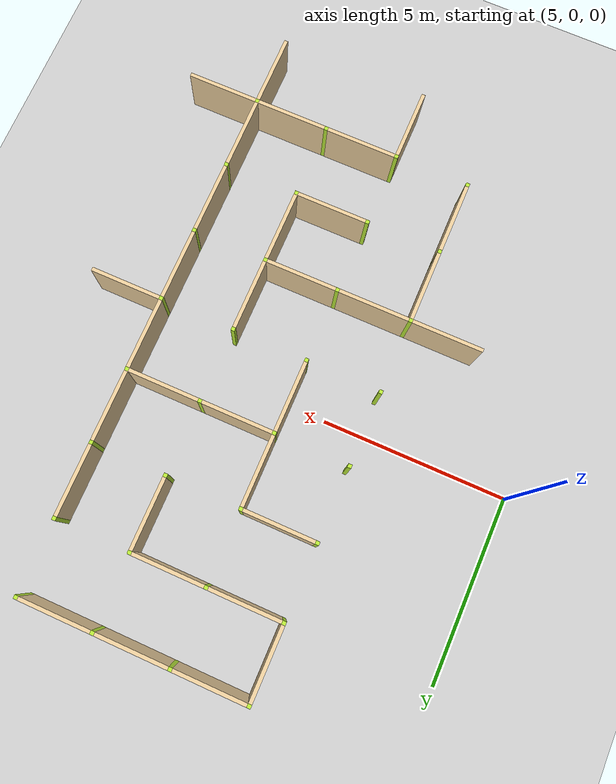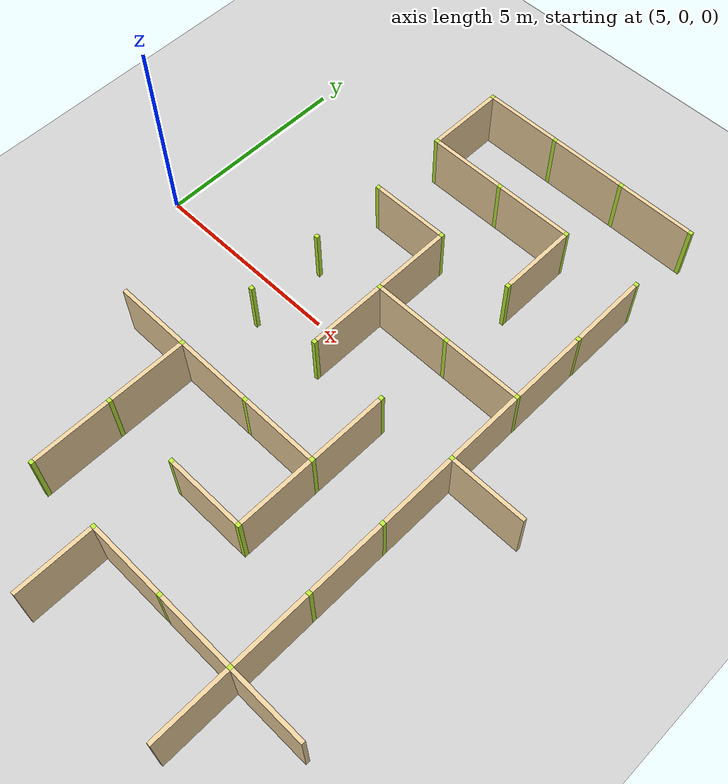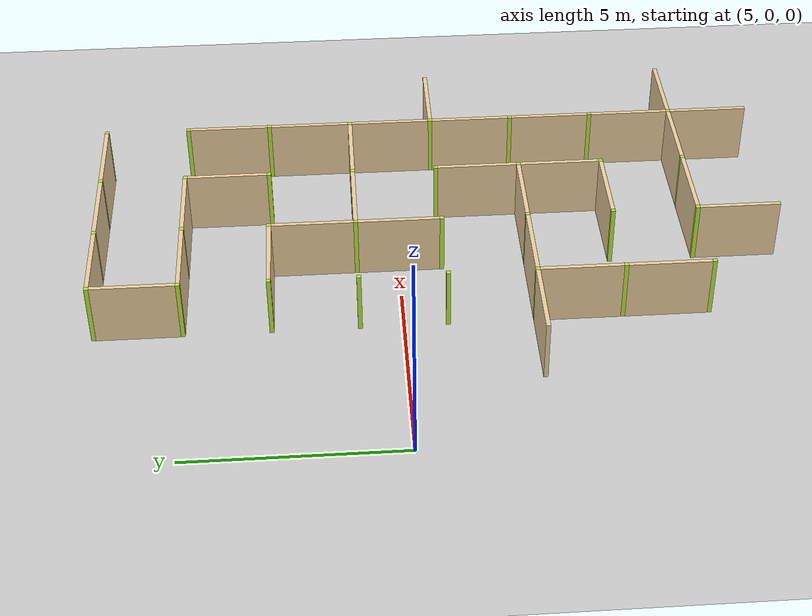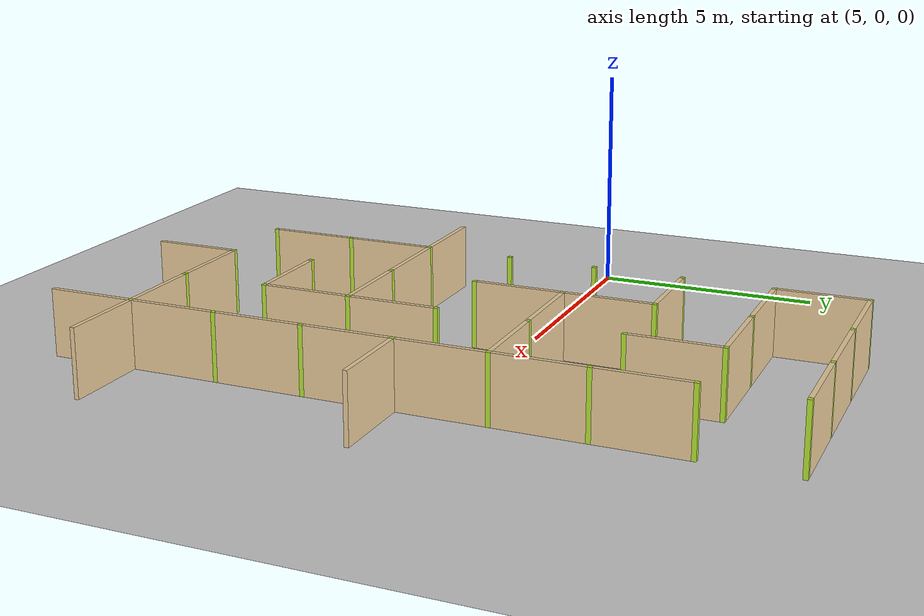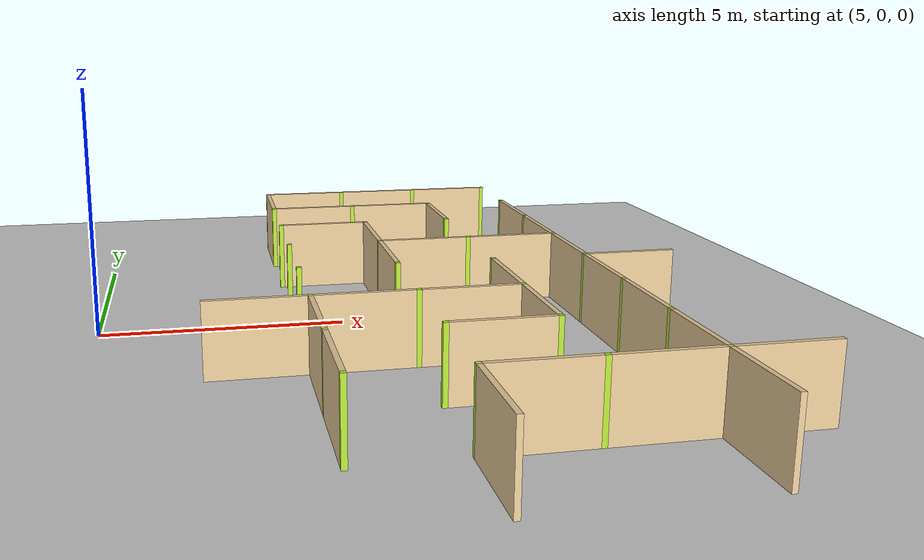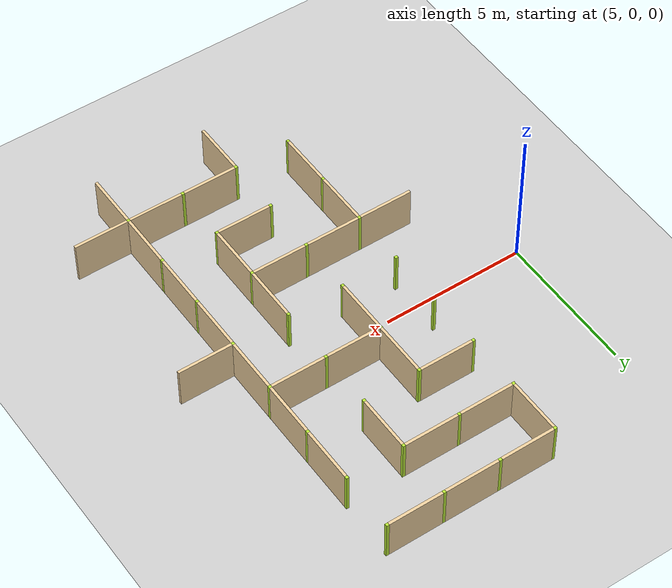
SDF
<sdf version="1.4">
 <world name="maze_world">
  <model name="ground">
   <static>true</static>
   <link name="ground_link">
    <collision name="collision1"><geometry><plane><normal>0 0 1</normal></plane></geometry></collision>
    <visual name="visual1"><geometry><plane><normal>0 0 1</normal><size>100 100</size></plane></geometry></visual>
   </link>
  </model>
  <model name="Untitled">
   <link name="Wall_8_0_h">
    <collision name="Wall_0_Collision">
     <geometry><box><size>1.9 0.1 1.5</size></box></geometry>
     <pose>0 0 0.75 0 -0 0</pose>
    </collision>
    <visual name="Wall_0_Visual">
     <pose>0 0 0.75 0 -0 0</pose>
     <geometry><box><size>1.9 0.1 1.5</size></box></geometry>
     <material>
      <script><uri>file://media/materials/scripts/gazebo.material</uri><name>Gazebo/Grey</name></script>
      <ambient>0.921569 0.807843 0.615686 1</ambient>
     </material>
     <meta><layer>0</layer></meta>
    </visual>
    <pose>10.0 7 0 0 -0 0</pose>
    <sensor name="my_contact" type="contact">
     <contact><collision>box_collision</collision><topic>/rover_collision</topic></contact>
    </sensor>
   </link>
   <link name="Wall_8_0_v">
    <collision name="Wall_0_Collision">
     <geometry><box><size>1.9 0.1 1.5</size></box></geometry>
     <pose>0 0 0.75 0 -0 0</pose>
    </collision>
    <visual name="Wall_0_Visual">
     <pose>0 0 0.75 0 -0 0</pose>
     <geometry><box><size>1.9 0.1 1.5</size></box></geometry>
     <material>
      <script><uri>file://media/materials/scripts/gazebo.material</uri><name>Gazebo/Grey</name></script>
      <ambient>0.921569 0.807843 0.615686 1</ambient>
     </material>
     <meta><layer>0</layer></meta>
    </visual>
    <pose>9 6.0 0 0 -0 1.5708</pose>
    <sensor name="my_contact" type="contact">
     <contact><collision>box_collision</collision><topic>/rover_collision</topic></contact>
    </sensor>
   </link>
   <link name="Joint_9_7">
    <collision name="Wall_2_Collision">
     <geometry><box><size>0.1 0.1 1.5</size></box></geometry>
     <pose>0 0 0.75 0 -0 0</pose>
    </collision>
    <visual name="Wall_2_Visual">
     <pose>0 0 0.75 0 -0 0</pose>
     <geometry><box><size>0.1 0.1 1.5</size></box></geometry>
     <material>
      <script><uri>file://media/materials/scripts/gazebo.material</uri><name>Gazebo/Grey</name></script>
      <ambient>0.721569 0.907843 0.215686 1</ambient>
     </material>
     <meta><layer>0</layer></meta>
    </visual>
    <pose>9 7 0 0 -0 0</pose>
    <sensor name="my_contact" type="contact">
     <contact><collision>box_collision</collision><topic>/rover_collision</topic></contact>
    </sensor>
   </link>
   <link name="Wall_9_0_h">
    <collision name="Wall_0_Collision">
     <geometry><box><size>1.9 0.1 1.5</size></box></geometry>
     <pose>0 0 0.75 0 -0 0</pose>
    </collision>
    <visual name="Wall_0_Visual">
     <pose>0 0 0.75 0 -0 0</pose>
     <geometry><box><size>1.9 0.1 1.5</size></box></geometry>
     <material>
      <script><uri>file://media/materials/scripts/gazebo.material</uri><name>Gazebo/Grey</name></script>
      <ambient>0.921569 0.807843 0.615686 1</ambient>
     </material>
     <meta><layer>0</layer></meta>
    </visual>
    <pose>12.0 7 0 0 -0 0</pose>
    <sensor name="my_contact" type="contact">
     <contact><collision>box_collision</collision><topic>/rover_collision</topic></contact>
    </sensor>
   </link>
   <link name="Joint_11_7">
    <collision name="Wall_2_Collision">
     <geometry><box><size>0.1 0.1 1.5</size></box></geometry>
     <pose>0 0 0.75 0 -0 0</pose>
    </collision>
    <visual name="Wall_2_Visual">
     <pose>0 0 0.75 0 -0 0</pose>
     <geometry><box><size>0.1 0.1 1.5</size></box></geometry>
     <material>
      <script><uri>file://media/materials/scripts/gazebo.material</uri><name>Gazebo/Grey</name></script>
      <ambient>0.721569 0.907843 0.215686 1</ambient>
     </material>
     <meta><layer>0</layer></meta>
    </visual>
    <pose>11 7 0 0 -0 0</pose>
    <sensor name="my_contact" type="contact">
     <contact><collision>box_collision</collision><topic>/rover_collision</topic></contact>
    </sensor>
   </link>
   <link name="Wall_10_0_h">
    <collision name="Wall_0_Collision">
     <geometry><box><size>1.9 0.1 1.5</size></box></geometry>
     <pose>0 0 0.75 0 -0 0</pose>
    </collision>
    <visual name="Wall_0_Visual">
     <pose>0 0 0.75 0 -0 0</pose>
     <geometry><box><size>1.9 0.1 1.5</size></box></geometry>
     <material>
      <script><uri>file://media/materials/scripts/gazebo.material</uri><name>Gazebo/Grey</name></script>
      <ambient>0.921569 0.807843 0.615686 1</ambient>
     </material>
     <meta><layer>0</layer></meta>
    </visual>
    <pose>14.0 7 0 0 -0 0</pose>
    <sensor name="my_contact" type="contact">
     <contact><collision>box_collision</collision><topic>/rover_collision</topic></contact>
    </sensor>
   </link>
   <link name="Joint_13_7">
    <collision name="Wall_2_Collision">
     <geometry><box><size>0.1 0.1 1.5</size></box></geometry>
     <pose>0 0 0.75 0 -0 0</pose>
    </collision>
    <visual name="Wall_2_Visual">
     <pose>0 0 0.75 0 -0 0</pose>
     <geometry><box><size>0.1 0.1 1.5</size></box></geometry>
     <material>
      <script><uri>file://media/materials/scripts/gazebo.material</uri><name>Gazebo/Grey</name></script>
      <ambient>0.721569 0.907843 0.215686 1</ambient>
     </material>
     <meta><layer>0</layer></meta>
    </visual>
    <pose>13 7 0 0 -0 0</pose>
    <sensor name="my_contact" type="contact">
     <contact><collision>box_collision</collision><topic>/rover_collision</topic></contact>
    </sensor>
   </link>
   <link name="Joint_15_7">
    <collision name="Wall_2_Collision">
     <geometry><box><size>0.1 0.1 1.5</size></box></geometry>
     <pose>0 0 0.75 0 -0 0</pose>
    </collision>
    <visual name="Wall_2_Visual">
     <pose>0 0 0.75 0 -0 0</pose>
     <geometry><box><size>0.1 0.1 1.5</size></box></geometry>
     <material>
      <script><uri>file://media/materials/scripts/gazebo.material</uri><name>Gazebo/Grey</name></script>
      <ambient>0.721569 0.907843 0.215686 1</ambient>
     </material>
     <meta><layer>0</layer></meta>
    </visual>
    <pose>15 7 0 0 -0 0</pose>
    <sensor name="my_contact" type="contact">
     <contact><collision>box_collision</collision><topic>/rover_collision</topic></contact>
    </sensor>
   </link>
   <link name="Wall_8_1_h">
    <collision name="Wall_0_Collision">
     <geometry><box><size>1.9 0.1 1.5</size></box></geometry>
     <pose>0 0 0.75 0 -0 0</pose>
    </collision>
    <visual name="Wall_0_Visual">
     <pose>0 0 0.75 0 -0 0</pose>
     <geometry><box><size>1.9 0.1 1.5</size></box></geometry>
     <material>
      <script><uri>file://media/materials/scripts/gazebo.material</uri><name>Gazebo/Grey</name></script>
      <ambient>0.921569 0.807843 0.615686 1</ambient>
     </material>
     <meta><layer>0</layer></meta>
    </visual>
    <pose>10.0 5 0 0 -0 0</pose>
    <sensor name="my_contact" type="contact">
     <contact><collision>box_collision</collision><topic>/rover_collision</topic></contact>
    </sensor>
   </link>
   <link name="Joint_9_5">
    <collision name="Wall_2_Collision">
     <geometry><box><size>0.1 0.1 1.5</size></box></geometry>
     <pose>0 0 0.75 0 -0 0</pose>
    </collision>
    <visual name="Wall_2_Visual">
     <pose>0 0 0.75 0 -0 0</pose>
     <geometry><box><size>0.1 0.1 1.5</size></box></geometry>
     <material>
      <script><uri>file://media/materials/scripts/gazebo.material</uri><name>Gazebo/Grey</name></script>
      <ambient>0.721569 0.907843 0.215686 1</ambient>
     </material>
     <meta><layer>0</layer></meta>
    </visual>
    <pose>9 5 0 0 -0 0</pose>
    <sensor name="my_contact" type="contact">
     <contact><collision>box_collision</collision><topic>/rover_collision</topic></contact>
    </sensor>
   </link>
   <link name="Wall_9_1_h">
    <collision name="Wall_0_Collision">
     <geometry><box><size>1.9 0.1 1.5</size></box></geometry>
     <pose>0 0 0.75 0 -0 0</pose>
    </collision>
    <visual name="Wall_0_Visual">
     <pose>0 0 0.75 0 -0 0</pose>
     <geometry><box><size>1.9 0.1 1.5</size></box></geometry>
     <material>
      <script><uri>file://media/materials/scripts/gazebo.material</uri><name>Gazebo/Grey</name></script>
      <ambient>0.921569 0.807843 0.615686 1</ambient>
     </material>
     <meta><layer>0</layer></meta>
    </visual>
    <pose>12.0 5 0 0 -0 0</pose>
    <sensor name="my_contact" type="contact">
     <contact><collision>box_collision</collision><topic>/rover_collision</topic></contact>
    </sensor>
   </link>
   <link name="Joint_11_5">
    <collision name="Wall_2_Collision">
     <geometry><box><size>0.1 0.1 1.5</size></box></geometry>
     <pose>0 0 0.75 0 -0 0</pose>
    </collision>
    <visual name="Wall_2_Visual">
     <pose>0 0 0.75 0 -0 0</pose>
     <geometry><box><size>0.1 0.1 1.5</size></box></geometry>
     <material>
      <script><uri>file://media/materials/scripts/gazebo.material</uri><name>Gazebo/Grey</name></script>
      <ambient>0.721569 0.907843 0.215686 1</ambient>
     </material>
     <meta><layer>0</layer></meta>
    </visual>
    <pose>11 5 0 0 -0 0</pose>
    <sensor name="my_contact" type="contact">
     <contact><collision>box_collision</collision><topic>/rover_collision</topic></contact>
    </sensor>
   </link>
   <link name="Wall_10_1_v">
    <collision name="Wall_0_Collision">
     <geometry><box><size>1.9 0.1 1.5</size></box></geometry>
     <pose>0 0 0.75 0 -0 0</pose>
    </collision>
    <visual name="Wall_0_Visual">
     <pose>0 0 0.75 0 -0 0</pose>
     <geometry><box><size>1.9 0.1 1.5</size></box></geometry>
     <material>
      <script><uri>file://media/materials/scripts/gazebo.material</uri><name>Gazebo/Grey</name></script>
      <ambient>0.921569 0.807843 0.615686 1</ambient>
     </material>
     <meta><layer>0</layer></meta>
    </visual>
    <pose>13 4.0 0 0 -0 1.5708</pose>
    <sensor name="my_contact" type="contact">
     <contact><collision>box_collision</collision><topic>/rover_collision</topic></contact>
    </sensor>
   </link>
   <link name="Joint_13_5">
    <collision name="Wall_2_Collision">
     <geometry><box><size>0.1 0.1 1.5</size></box></geometry>
     <pose>0 0 0.75 0 -0 0</pose>
    </collision>
    <visual name="Wall_2_Visual">
     <pose>0 0 0.75 0 -0 0</pose>
     <geometry><box><size>0.1 0.1 1.5</size></box></geometry>
     <material>
      <script><uri>file://media/materials/scripts/gazebo.material</uri><name>Gazebo/Grey</name></script>
      <ambient>0.721569 0.907843 0.215686 1</ambient>
     </material>
     <meta><layer>0</layer></meta>
    </visual>
    <pose>13 5 0 0 -0 0</pose>
    <sensor name="my_contact" type="contact">
     <contact><collision>box_collision</collision><topic>/rover_collision</topic></contact>
    </sensor>
   </link>
   <link name="Wall_11_1_v">
    <collision name="Wall_0_Collision">
     <geometry><box><size>1.9 0.1 1.5</size></box></geometry>
     <pose>0 0 0.75 0 -0 0</pose>
    </collision>
    <visual name="Wall_0_Visual">
     <pose>0 0 0.75 0 -0 0</pose>
     <geometry><box><size>1.9 0.1 1.5</size></box></geometry>
     <material>
      <script><uri>file://media/materials/scripts/gazebo.material</uri><name>Gazebo/Grey</name></script>
      <ambient>0.921569 0.807843 0.615686 1</ambient>
     </material>
     <meta><layer>0</layer></meta>
    </visual>
    <pose>15 4.0 0 0 -0 1.5708</pose>
    <sensor name="my_contact" type="contact">
     <contact><collision>box_collision</collision><topic>/rover_collision</topic></contact>
    </sensor>
   </link>
   <link name="Joint_15_5">
    <collision name="Wall_2_Collision">
     <geometry><box><size>0.1 0.1 1.5</size></box></geometry>
     <pose>0 0 0.75 0 -0 0</pose>
    </collision>
    <visual name="Wall_2_Visual">
     <pose>0 0 0.75 0 -0 0</pose>
     <geometry><box><size>0.1 0.1 1.5</size></box></geometry>
     <material>
      <script><uri>file://media/materials/scripts/gazebo.material</uri><name>Gazebo/Grey</name></script>
      <ambient>0.721569 0.907843 0.215686 1</ambient>
     </material>
     <meta><layer>0</layer></meta>
    </visual>
    <pose>15 5 0 0 -0 0</pose>
    <sensor name="my_contact" type="contact">
     <contact><collision>box_collision</collision><topic>/rover_collision</topic></contact>
    </sensor>
   </link>
   <link name="Wall_8_2_h">
    <collision name="Wall_0_Collision">
     <geometry><box><size>1.9 0.1 1.5</size></box></geometry>
     <pose>0 0 0.75 0 -0 0</pose>
    </collision>
    <visual name="Wall_0_Visual">
     <pose>0 0 0.75 0 -0 0</pose>
     <geometry><box><size>1.9 0.1 1.5</size></box></geometry>
     <material>
      <script><uri>file://media/materials/scripts/gazebo.material</uri><name>Gazebo/Grey</name></script>
      <ambient>0.921569 0.807843 0.615686 1</ambient>
     </material>
     <meta><layer>0</layer></meta>
    </visual>
    <pose>10.0 3 0 0 -0 0</pose>
    <sensor name="my_contact" type="contact">
     <contact><collision>box_collision</collision><topic>/rover_collision</topic></contact>
    </sensor>
   </link>
   <link name="Joint_9_3">
    <collision name="Wall_2_Collision">
     <geometry><box><size>0.1 0.1 1.5</size></box></geometry>
     <pose>0 0 0.75 0 -0 0</pose>
    </collision>
    <visual name="Wall_2_Visual">
     <pose>0 0 0.75 0 -0 0</pose>
     <geometry><box><size>0.1 0.1 1.5</size></box></geometry>
     <material>
      <script><uri>file://media/materials/scripts/gazebo.material</uri><name>Gazebo/Grey</name></script>
      <ambient>0.721569 0.907843 0.215686 1</ambient>
     </material>
     <meta><layer>0</layer></meta>
    </visual>
    <pose>9 3 0 0 -0 0</pose>
    <sensor name="my_contact" type="contact">
     <contact><collision>box_collision</collision><topic>/rover_collision</topic></contact>
    </sensor>
   </link>
   <link name="Wall_9_2_v">
    <collision name="Wall_0_Collision">
     <geometry><box><size>1.9 0.1 1.5</size></box></geometry>
     <pose>0 0 0.75 0 -0 0</pose>
    </collision>
    <visual name="Wall_0_Visual">
     <pose>0 0 0.75 0 -0 0</pose>
     <geometry><box><size>1.9 0.1 1.5</size></box></geometry>
     <material>
      <script><uri>file://media/materials/scripts/gazebo.material</uri><name>Gazebo/Grey</name></script>
      <ambient>0.921569 0.807843 0.615686 1</ambient>
     </material>
     <meta><layer>0</layer></meta>
    </visual>
    <pose>11 2.0 0 0 -0 1.5708</pose>
    <sensor name="my_contact" type="contact">
     <contact><collision>box_collision</collision><topic>/rover_collision</topic></contact>
    </sensor>
   </link>
   <link name="Joint_11_3">
    <collision name="Wall_2_Collision">
     <geometry><box><size>0.1 0.1 1.5</size></box></geometry>
     <pose>0 0 0.75 0 -0 0</pose>
    </collision>
    <visual name="Wall_2_Visual">
     <pose>0 0 0.75 0 -0 0</pose>
     <geometry><box><size>0.1 0.1 1.5</size></box></geometry>
     <material>
      <script><uri>file://media/materials/scripts/gazebo.material</uri><name>Gazebo/Grey</name></script>
      <ambient>0.721569 0.907843 0.215686 1</ambient>
     </material>
     <meta><layer>0</layer></meta>
    </visual>
    <pose>11 3 0 0 -0 0</pose>
    <sensor name="my_contact" type="contact">
     <contact><collision>box_collision</collision><topic>/rover_collision</topic></contact>
    </sensor>
   </link>
   <link name="Joint_13_3">
    <collision name="Wall_2_Collision">
     <geometry><box><size>0.1 0.1 1.5</size></box></geometry>
     <pose>0 0 0.75 0 -0 0</pose>
    </collision>
    <visual name="Wall_2_Visual">
     <pose>0 0 0.75 0 -0 0</pose>
     <geometry><box><size>0.1 0.1 1.5</size></box></geometry>
     <material>
      <script><uri>file://media/materials/scripts/gazebo.material</uri><name>Gazebo/Grey</name></script>
      <ambient>0.721569 0.907843 0.215686 1</ambient>
     </material>
     <meta><layer>0</layer></meta>
    </visual>
    <pose>13 3 0 0 -0 0</pose>
    <sensor name="my_contact" type="contact">
     <contact><collision>box_collision</collision><topic>/rover_collision</topic></contact>
    </sensor>
   </link>
   <link name="Wall_11_2_v">
    <collision name="Wall_0_Collision">
     <geometry><box><size>1.9 0.1 1.5</size></box></geometry>
     <pose>0 0 0.75 0 -0 0</pose>
    </collision>
    <visual name="Wall_0_Visual">
     <pose>0 0 0.75 0 -0 0</pose>
     <geometry><box><size>1.9 0.1 1.5</size></box></geometry>
     <material>
      <script><uri>file://media/materials/scripts/gazebo.material</uri><name>Gazebo/Grey</name></script>
      <ambient>0.921569 0.807843 0.615686 1</ambient>
     </material>
     <meta><layer>0</layer></meta>
    </visual>
    <pose>15 2.0 0 0 -0 1.5708</pose>
    <sensor name="my_contact" type="contact">
     <contact><collision>box_collision</collision><topic>/rover_collision</topic></contact>
    </sensor>
   </link>
   <link name="Joint_15_3">
    <collision name="Wall_2_Collision">
     <geometry><box><size>0.1 0.1 1.5</size></box></geometry>
     <pose>0 0 0.75 0 -0 0</pose>
    </collision>
    <visual name="Wall_2_Visual">
     <pose>0 0 0.75 0 -0 0</pose>
     <geometry><box><size>0.1 0.1 1.5</size></box></geometry>
     <material>
      <script><uri>file://media/materials/scripts/gazebo.material</uri><name>Gazebo/Grey</name></script>
      <ambient>0.721569 0.907843 0.215686 1</ambient>
     </material>
     <meta><layer>0</layer></meta>
    </visual>
    <pose>15 3 0 0 -0 0</pose>
    <sensor name="my_contact" type="contact">
     <contact><collision>box_collision</collision><topic>/rover_collision</topic></contact>
    </sensor>
   </link>
   <link name="Joint_9_1">
    <collision name="Wall_2_Collision">
     <geometry><box><size>0.1 0.1 1.5</size></box></geometry>
     <pose>0 0 0.75 0 -0 0</pose>
    </collision>
    <visual name="Wall_2_Visual">
     <pose>0 0 0.75 0 -0 0</pose>
     <geometry><box><size>0.1 0.1 1.5</size></box></geometry>
     <material>
      <script><uri>file://media/materials/scripts/gazebo.material</uri><name>Gazebo/Grey</name></script>
      <ambient>0.721569 0.907843 0.215686 1</ambient>
     </material>
     <meta><layer>0</layer></meta>
    </visual>
    <pose>9 1 0 0 -0 0</pose>
    <sensor name="my_contact" type="contact">
     <contact><collision>box_collision</collision><topic>/rover_collision</topic></contact>
    </sensor>
   </link>
   <link name="Wall_9_3_h">
    <collision name="Wall_0_Collision">
     <geometry><box><size>1.9 0.1 1.5</size></box></geometry>
     <pose>0 0 0.75 0 -0 0</pose>
    </collision>
    <visual name="Wall_0_Visual">
     <pose>0 0 0.75 0 -0 0</pose>
     <geometry><box><size>1.9 0.1 1.5</size></box></geometry>
     <material>
      <script><uri>file://media/materials/scripts/gazebo.material</uri><name>Gazebo/Grey</name></script>
      <ambient>0.921569 0.807843 0.615686 1</ambient>
     </material>
     <meta><layer>0</layer></meta>
    </visual>
    <pose>12.0 1 0 0 -0 0</pose>
    <sensor name="my_contact" type="contact">
     <contact><collision>box_collision</collision><topic>/rover_collision</topic></contact>
    </sensor>
   </link>
   <link name="Wall_9_3_v">
    <collision name="Wall_0_Collision">
     <geometry><box><size>1.9 0.1 1.5</size></box></geometry>
     <pose>0 0 0.75 0 -0 0</pose>
    </collision>
    <visual name="Wall_0_Visual">
     <pose>0 0 0.75 0 -0 0</pose>
     <geometry><box><size>1.9 0.1 1.5</size></box></geometry>
     <material>
      <script><uri>file://media/materials/scripts/gazebo.material</uri><name>Gazebo/Grey</name></script>
      <ambient>0.921569 0.807843 0.615686 1</ambient>
     </material>
     <meta><layer>0</layer></meta>
    </visual>
    <pose>11 -0.0 0 0 -0 1.5708</pose>
    <sensor name="my_contact" type="contact">
     <contact><collision>box_collision</collision><topic>/rover_collision</topic></contact>
    </sensor>
   </link>
   <link name="Joint_11_1">
    <collision name="Wall_2_Collision">
     <geometry><box><size>0.1 0.1 1.5</size></box></geometry>
     <pose>0 0 0.75 0 -0 0</pose>
    </collision>
    <visual name="Wall_2_Visual">
     <pose>0 0 0.75 0 -0 0</pose>
     <geometry><box><size>0.1 0.1 1.5</size></box></geometry>
     <material>
      <script><uri>file://media/materials/scripts/gazebo.material</uri><name>Gazebo/Grey</name></script>
      <ambient>0.721569 0.907843 0.215686 1</ambient>
     </material>
     <meta><layer>0</layer></meta>
    </visual>
    <pose>11 1 0 0 -0 0</pose>
    <sensor name="my_contact" type="contact">
     <contact><collision>box_collision</collision><topic>/rover_collision</topic></contact>
    </sensor>
   </link>
   <link name="Wall_10_3_h">
    <collision name="Wall_0_Collision">
     <geometry><box><size>1.9 0.1 1.5</size></box></geometry>
     <pose>0 0 0.75 0 -0 0</pose>
    </collision>
    <visual name="Wall_0_Visual">
     <pose>0 0 0.75 0 -0 0</pose>
     <geometry><box><size>1.9 0.1 1.5</size></box></geometry>
     <material>
      <script><uri>file://media/materials/scripts/gazebo.material</uri><name>Gazebo/Grey</name></script>
      <ambient>0.921569 0.807843 0.615686 1</ambient>
     </material>
     <meta><layer>0</layer></meta>
    </visual>
    <pose>14.0 1 0 0 -0 0</pose>
    <sensor name="my_contact" type="contact">
     <contact><collision>box_collision</collision><topic>/rover_collision</topic></contact>
    </sensor>
   </link>
   <link name="Joint_13_1">
    <collision name="Wall_2_Collision">
     <geometry><box><size>0.1 0.1 1.5</size></box></geometry>
     <pose>0 0 0.75 0 -0 0</pose>
    </collision>
    <visual name="Wall_2_Visual">
     <pose>0 0 0.75 0 -0 0</pose>
     <geometry><box><size>0.1 0.1 1.5</size></box></geometry>
     <material>
      <script><uri>file://media/materials/scripts/gazebo.material</uri><name>Gazebo/Grey</name></script>
      <ambient>0.721569 0.907843 0.215686 1</ambient>
     </material>
     <meta><layer>0</layer></meta>
    </visual>
    <pose>13 1 0 0 -0 0</pose>
    <sensor name="my_contact" type="contact">
     <contact><collision>box_collision</collision><topic>/rover_collision</topic></contact>
    </sensor>
   </link>
   <link name="Wall_11_3_v">
    <collision name="Wall_0_Collision">
     <geometry><box><size>1.9 0.1 1.5</size></box></geometry>
     <pose>0 0 0.75 0 -0 0</pose>
    </collision>
    <visual name="Wall_0_Visual">
     <pose>0 0 0.75 0 -0 0</pose>
     <geometry><box><size>1.9 0.1 1.5</size></box></geometry>
     <material>
      <script><uri>file://media/materials/scripts/gazebo.material</uri><name>Gazebo/Grey</name></script>
      <ambient>0.921569 0.807843 0.615686 1</ambient>
     </material>
     <meta><layer>0</layer></meta>
    </visual>
    <pose>15 -0.0 0 0 -0 1.5708</pose>
    <sensor name="my_contact" type="contact">
     <contact><collision>box_collision</collision><topic>/rover_collision</topic></contact>
    </sensor>
   </link>
   <link name="Joint_15_1">
    <collision name="Wall_2_Collision">
     <geometry><box><size>0.1 0.1 1.5</size></box></geometry>
     <pose>0 0 0.75 0 -0 0</pose>
    </collision>
    <visual name="Wall_2_Visual">
     <pose>0 0 0.75 0 -0 0</pose>
     <geometry><box><size>0.1 0.1 1.5</size></box></geometry>
     <material>
      <script><uri>file://media/materials/scripts/gazebo.material</uri><name>Gazebo/Grey</name></script>
      <ambient>0.721569 0.907843 0.215686 1</ambient>
     </material>
     <meta><layer>0</layer></meta>
    </visual>
    <pose>15 1 0 0 -0 0</pose>
    <sensor name="my_contact" type="contact">
     <contact><collision>box_collision</collision><topic>/rover_collision</topic></contact>
    </sensor>
   </link>
   <link name="Joint_9_-1">
    <collision name="Wall_2_Collision">
     <geometry><box><size>0.1 0.1 1.5</size></box></geometry>
     <pose>0 0 0.75 0 -0 0</pose>
    </collision>
    <visual name="Wall_2_Visual">
     <pose>0 0 0.75 0 -0 0</pose>
     <geometry><box><size>0.1 0.1 1.5</size></box></geometry>
     <material>
      <script><uri>file://media/materials/scripts/gazebo.material</uri><name>Gazebo/Grey</name></script>
      <ambient>0.721569 0.907843 0.215686 1</ambient>
     </material>
     <meta><layer>0</layer></meta>
    </visual>
    <pose>9 -1 0 0 -0 0</pose>
    <sensor name="my_contact" type="contact">
     <contact><collision>box_collision</collision><topic>/rover_collision</topic></contact>
    </sensor>
   </link>
   <link name="Joint_11_-1">
    <collision name="Wall_2_Collision">
     <geometry><box><size>0.1 0.1 1.5</size></box></geometry>
     <pose>0 0 0.75 0 -0 0</pose>
    </collision>
    <visual name="Wall_2_Visual">
     <pose>0 0 0.75 0 -0 0</pose>
     <geometry><box><size>0.1 0.1 1.5</size></box></geometry>
     <material>
      <script><uri>file://media/materials/scripts/gazebo.material</uri><name>Gazebo/Grey</name></script>
      <ambient>0.721569 0.907843 0.215686 1</ambient>
     </material>
     <meta><layer>0</layer></meta>
    </visual>
    <pose>11 -1 0 0 -0 0</pose>
    <sensor name="my_contact" type="contact">
     <contact><collision>box_collision</collision><topic>/rover_collision</topic></contact>
    </sensor>
   </link>
   <link name="Wall_10_4_v">
    <collision name="Wall_0_Collision">
     <geometry><box><size>1.9 0.1 1.5</size></box></geometry>
     <pose>0 0 0.75 0 -0 0</pose>
    </collision>
    <visual name="Wall_0_Visual">
     <pose>0 0 0.75 0 -0 0</pose>
     <geometry><box><size>1.9 0.1 1.5</size></box></geometry>
     <material>
      <script><uri>file://media/materials/scripts/gazebo.material</uri><name>Gazebo/Grey</name></script>
      <ambient>0.921569 0.807843 0.615686 1</ambient>
     </material>
     <meta><layer>0</layer></meta>
    </visual>
    <pose>13 -2.0 0 0 -0 1.5708</pose>
    <sensor name="my_contact" type="contact">
     <contact><collision>box_collision</collision><topic>/rover_collision</topic></contact>
    </sensor>
   </link>
   <link name="Joint_13_-1">
    <collision name="Wall_2_Collision">
     <geometry><box><size>0.1 0.1 1.5</size></box></geometry>
     <pose>0 0 0.75 0 -0 0</pose>
    </collision>
    <visual name="Wall_2_Visual">
     <pose>0 0 0.75 0 -0 0</pose>
     <geometry><box><size>0.1 0.1 1.5</size></box></geometry>
     <material>
      <script><uri>file://media/materials/scripts/gazebo.material</uri><name>Gazebo/Grey</name></script>
      <ambient>0.721569 0.907843 0.215686 1</ambient>
     </material>
     <meta><layer>0</layer></meta>
    </visual>
    <pose>13 -1 0 0 -0 0</pose>
    <sensor name="my_contact" type="contact">
     <contact><collision>box_collision</collision><topic>/rover_collision</topic></contact>
    </sensor>
   </link>
   <link name="Wall_11_4_h">
    <collision name="Wall_0_Collision">
     <geometry><box><size>1.9 0.1 1.5</size></box></geometry>
     <pose>0 0 0.75 0 -0 0</pose>
    </collision>
    <visual name="Wall_0_Visual">
     <pose>0 0 0.75 0 -0 0</pose>
     <geometry><box><size>1.9 0.1 1.5</size></box></geometry>
     <material>
      <script><uri>file://media/materials/scripts/gazebo.material</uri><name>Gazebo/Grey</name></script>
      <ambient>0.921569 0.807843 0.615686 1</ambient>
     </material>
     <meta><layer>0</layer></meta>
    </visual>
    <pose>16.0 -1 0 0 -0 0</pose>
    <sensor name="my_contact" type="contact">
     <contact><collision>box_collision</collision><topic>/rover_collision</topic></contact>
    </sensor>
   </link>
   <link name="Wall_11_4_v">
    <collision name="Wall_0_Collision">
     <geometry><box><size>1.9 0.1 1.5</size></box></geometry>
     <pose>0 0 0.75 0 -0 0</pose>
    </collision>
    <visual name="Wall_0_Visual">
     <pose>0 0 0.75 0 -0 0</pose>
     <geometry><box><size>1.9 0.1 1.5</size></box></geometry>
     <material>
      <script><uri>file://media/materials/scripts/gazebo.material</uri><name>Gazebo/Grey</name></script>
      <ambient>0.921569 0.807843 0.615686 1</ambient>
     </material>
     <meta><layer>0</layer></meta>
    </visual>
    <pose>15 -2.0 0 0 -0 1.5708</pose>
    <sensor name="my_contact" type="contact">
     <contact><collision>box_collision</collision><topic>/rover_collision</topic></contact>
    </sensor>
   </link>
   <link name="Joint_15_-1">
    <collision name="Wall_2_Collision">
     <geometry><box><size>0.1 0.1 1.5</size></box></geometry>
     <pose>0 0 0.75 0 -0 0</pose>
    </collision>
    <visual name="Wall_2_Visual">
     <pose>0 0 0.75 0 -0 0</pose>
     <geometry><box><size>0.1 0.1 1.5</size></box></geometry>
     <material>
      <script><uri>file://media/materials/scripts/gazebo.material</uri><name>Gazebo/Grey</name></script>
      <ambient>0.721569 0.907843 0.215686 1</ambient>
     </material>
     <meta><layer>0</layer></meta>
    </visual>
    <pose>15 -1 0 0 -0 0</pose>
    <sensor name="my_contact" type="contact">
     <contact><collision>box_collision</collision><topic>/rover_collision</topic></contact>
    </sensor>
   </link>
   <link name="Wall_7_5_h">
    <collision name="Wall_0_Collision">
     <geometry><box><size>1.9 0.1 1.5</size></box></geometry>
     <pose>0 0 0.75 0 -0 0</pose>
    </collision>
    <visual name="Wall_0_Visual">
     <pose>0 0 0.75 0 -0 0</pose>
     <geometry><box><size>1.9 0.1 1.5</size></box></geometry>
     <material>
      <script><uri>file://media/materials/scripts/gazebo.material</uri><name>Gazebo/Grey</name></script>
      <ambient>0.921569 0.807843 0.615686 1</ambient>
     </material>
     <meta><layer>0</layer></meta>
    </visual>
    <pose>8.0 -3 0 0 -0 0</pose>
    <sensor name="my_contact" type="contact">
     <contact><collision>box_collision</collision><topic>/rover_collision</topic></contact>
    </sensor>
   </link>
   <link name="Wall_8_5_h">
    <collision name="Wall_0_Collision">
     <geometry><box><size>1.9 0.1 1.5</size></box></geometry>
     <pose>0 0 0.75 0 -0 0</pose>
    </collision>
    <visual name="Wall_0_Visual">
     <pose>0 0 0.75 0 -0 0</pose>
     <geometry><box><size>1.9 0.1 1.5</size></box></geometry>
     <material>
      <script><uri>file://media/materials/scripts/gazebo.material</uri><name>Gazebo/Grey</name></script>
      <ambient>0.921569 0.807843 0.615686 1</ambient>
     </material>
     <meta><layer>0</layer></meta>
    </visual>
    <pose>10.0 -3 0 0 -0 0</pose>
    <sensor name="my_contact" type="contact">
     <contact><collision>box_collision</collision><topic>/rover_collision</topic></contact>
    </sensor>
   </link>
   <link name="Wall_8_5_v">
    <collision name="Wall_0_Collision">
     <geometry><box><size>1.9 0.1 1.5</size></box></geometry>
     <pose>0 0 0.75 0 -0 0</pose>
    </collision>
    <visual name="Wall_0_Visual">
     <pose>0 0 0.75 0 -0 0</pose>
     <geometry><box><size>1.9 0.1 1.5</size></box></geometry>
     <material>
      <script><uri>file://media/materials/scripts/gazebo.material</uri><name>Gazebo/Grey</name></script>
      <ambient>0.921569 0.807843 0.615686 1</ambient>
     </material>
     <meta><layer>0</layer></meta>
    </visual>
    <pose>9 -4.0 0 0 -0 1.5708</pose>
    <sensor name="my_contact" type="contact">
     <contact><collision>box_collision</collision><topic>/rover_collision</topic></contact>
    </sensor>
   </link>
   <link name="Joint_9_-3">
    <collision name="Wall_2_Collision">
     <geometry><box><size>0.1 0.1 1.5</size></box></geometry>
     <pose>0 0 0.75 0 -0 0</pose>
    </collision>
    <visual name="Wall_2_Visual">
     <pose>0 0 0.75 0 -0 0</pose>
     <geometry><box><size>0.1 0.1 1.5</size></box></geometry>
     <material>
      <script><uri>file://media/materials/scripts/gazebo.material</uri><name>Gazebo/Grey</name></script>
      <ambient>0.721569 0.907843 0.215686 1</ambient>
     </material>
     <meta><layer>0</layer></meta>
    </visual>
    <pose>9 -3 0 0 -0 0</pose>
    <sensor name="my_contact" type="contact">
     <contact><collision>box_collision</collision><topic>/rover_collision</topic></contact>
    </sensor>
   </link>
   <link name="Wall_9_5_h">
    <collision name="Wall_0_Collision">
     <geometry><box><size>1.9 0.1 1.5</size></box></geometry>
     <pose>0 0 0.75 0 -0 0</pose>
    </collision>
    <visual name="Wall_0_Visual">
     <pose>0 0 0.75 0 -0 0</pose>
     <geometry><box><size>1.9 0.1 1.5</size></box></geometry>
     <material>
      <script><uri>file://media/materials/scripts/gazebo.material</uri><name>Gazebo/Grey</name></script>
      <ambient>0.921569 0.807843 0.615686 1</ambient>
     </material>
     <meta><layer>0</layer></meta>
    </visual>
    <pose>12.0 -3 0 0 -0 0</pose>
    <sensor name="my_contact" type="contact">
     <contact><collision>box_collision</collision><topic>/rover_collision</topic></contact>
    </sensor>
   </link>
   <link name="Joint_11_-3">
    <collision name="Wall_2_Collision">
     <geometry><box><size>0.1 0.1 1.5</size></box></geometry>
     <pose>0 0 0.75 0 -0 0</pose>
    </collision>
    <visual name="Wall_2_Visual">
     <pose>0 0 0.75 0 -0 0</pose>
     <geometry><box><size>0.1 0.1 1.5</size></box></geometry>
     <material>
      <script><uri>file://media/materials/scripts/gazebo.material</uri><name>Gazebo/Grey</name></script>
      <ambient>0.721569 0.907843 0.215686 1</ambient>
     </material>
     <meta><layer>0</layer></meta>
    </visual>
    <pose>11 -3 0 0 -0 0</pose>
    <sensor name="my_contact" type="contact">
     <contact><collision>box_collision</collision><topic>/rover_collision</topic></contact>
    </sensor>
   </link>
   <link name="Wall_10_5_v">
    <collision name="Wall_0_Collision">
     <geometry><box><size>1.9 0.1 1.5</size></box></geometry>
     <pose>0 0 0.75 0 -0 0</pose>
    </collision>
    <visual name="Wall_0_Visual">
     <pose>0 0 0.75 0 -0 0</pose>
     <geometry><box><size>1.9 0.1 1.5</size></box></geometry>
     <material>
      <script><uri>file://media/materials/scripts/gazebo.material</uri><name>Gazebo/Grey</name></script>
      <ambient>0.921569 0.807843 0.615686 1</ambient>
     </material>
     <meta><layer>0</layer></meta>
    </visual>
    <pose>13 -4.0 0 0 -0 1.5708</pose>
    <sensor name="my_contact" type="contact">
     <contact><collision>box_collision</collision><topic>/rover_collision</topic></contact>
    </sensor>
   </link>
   <link name="Joint_13_-3">
    <collision name="Wall_2_Collision">
     <geometry><box><size>0.1 0.1 1.5</size></box></geometry>
     <pose>0 0 0.75 0 -0 0</pose>
    </collision>
    <visual name="Wall_2_Visual">
     <pose>0 0 0.75 0 -0 0</pose>
     <geometry><box><size>0.1 0.1 1.5</size></box></geometry>
     <material>
      <script><uri>file://media/materials/scripts/gazebo.material</uri><name>Gazebo/Grey</name></script>
      <ambient>0.721569 0.907843 0.215686 1</ambient>
     </material>
     <meta><layer>0</layer></meta>
    </visual>
    <pose>13 -3 0 0 -0 0</pose>
    <sensor name="my_contact" type="contact">
     <contact><collision>box_collision</collision><topic>/rover_collision</topic></contact>
    </sensor>
   </link>
   <link name="Wall_11_5_v">
    <collision name="Wall_0_Collision">
     <geometry><box><size>1.9 0.1 1.5</size></box></geometry>
     <pose>0 0 0.75 0 -0 0</pose>
    </collision>
    <visual name="Wall_0_Visual">
     <pose>0 0 0.75 0 -0 0</pose>
     <geometry><box><size>1.9 0.1 1.5</size></box></geometry>
     <material>
      <script><uri>file://media/materials/scripts/gazebo.material</uri><name>Gazebo/Grey</name></script>
      <ambient>0.921569 0.807843 0.615686 1</ambient>
     </material>
     <meta><layer>0</layer></meta>
    </visual>
    <pose>15 -4.0 0 0 -0 1.5708</pose>
    <sensor name="my_contact" type="contact">
     <contact><collision>box_collision</collision><topic>/rover_collision</topic></contact>
    </sensor>
   </link>
   <link name="Joint_15_-3">
    <collision name="Wall_2_Collision">
     <geometry><box><size>0.1 0.1 1.5</size></box></geometry>
     <pose>0 0 0.75 0 -0 0</pose>
    </collision>
    <visual name="Wall_2_Visual">
     <pose>0 0 0.75 0 -0 0</pose>
     <geometry><box><size>0.1 0.1 1.5</size></box></geometry>
     <material>
      <script><uri>file://media/materials/scripts/gazebo.material</uri><name>Gazebo/Grey</name></script>
      <ambient>0.721569 0.907843 0.215686 1</ambient>
     </material>
     <meta><layer>0</layer></meta>
    </visual>
    <pose>15 -3 0 0 -0 0</pose>
    <sensor name="my_contact" type="contact">
     <contact><collision>box_collision</collision><topic>/rover_collision</topic></contact>
    </sensor>
   </link>
   <link name="Wall_8_6_v">
    <collision name="Wall_0_Collision">
     <geometry><box><size>1.9 0.1 1.5</size></box></geometry>
     <pose>0 0 0.75 0 -0 0</pose>
    </collision>
    <visual name="Wall_0_Visual">
     <pose>0 0 0.75 0 -0 0</pose>
     <geometry><box><size>1.9 0.1 1.5</size></box></geometry>
     <material>
      <script><uri>file://media/materials/scripts/gazebo.material</uri><name>Gazebo/Grey</name></script>
      <ambient>0.921569 0.807843 0.615686 1</ambient>
     </material>
     <meta><layer>0</layer></meta>
    </visual>
    <pose>9 -6.0 0 0 -0 1.5708</pose>
    <sensor name="my_contact" type="contact">
     <contact><collision>box_collision</collision><topic>/rover_collision</topic></contact>
    </sensor>
   </link>
   <link name="Joint_9_-5">
    <collision name="Wall_2_Collision">
     <geometry><box><size>0.1 0.1 1.5</size></box></geometry>
     <pose>0 0 0.75 0 -0 0</pose>
    </collision>
    <visual name="Wall_2_Visual">
     <pose>0 0 0.75 0 -0 0</pose>
     <geometry><box><size>0.1 0.1 1.5</size></box></geometry>
     <material>
      <script><uri>file://media/materials/scripts/gazebo.material</uri><name>Gazebo/Grey</name></script>
      <ambient>0.721569 0.907843 0.215686 1</ambient>
     </material>
     <meta><layer>0</layer></meta>
    </visual>
    <pose>9 -5 0 0 -0 0</pose>
    <sensor name="my_contact" type="contact">
     <contact><collision>box_collision</collision><topic>/rover_collision</topic></contact>
    </sensor>
   </link>
   <link name="Wall_9_6_h">
    <collision name="Wall_0_Collision">
     <geometry><box><size>1.9 0.1 1.5</size></box></geometry>
     <pose>0 0 0.75 0 -0 0</pose>
    </collision>
    <visual name="Wall_0_Visual">
     <pose>0 0 0.75 0 -0 0</pose>
     <geometry><box><size>1.9 0.1 1.5</size></box></geometry>
     <material>
      <script><uri>file://media/materials/scripts/gazebo.material</uri><name>Gazebo/Grey</name></script>
      <ambient>0.921569 0.807843 0.615686 1</ambient>
     </material>
     <meta><layer>0</layer></meta>
    </visual>
    <pose>12.0 -5 0 0 -0 0</pose>
    <sensor name="my_contact" type="contact">
     <contact><collision>box_collision</collision><topic>/rover_collision</topic></contact>
    </sensor>
   </link>
   <link name="Joint_11_-5">
    <collision name="Wall_2_Collision">
     <geometry><box><size>0.1 0.1 1.5</size></box></geometry>
     <pose>0 0 0.75 0 -0 0</pose>
    </collision>
    <visual name="Wall_2_Visual">
     <pose>0 0 0.75 0 -0 0</pose>
     <geometry><box><size>0.1 0.1 1.5</size></box></geometry>
     <material>
      <script><uri>file://media/materials/scripts/gazebo.material</uri><name>Gazebo/Grey</name></script>
      <ambient>0.721569 0.907843 0.215686 1</ambient>
     </material>
     <meta><layer>0</layer></meta>
    </visual>
    <pose>11 -5 0 0 -0 0</pose>
    <sensor name="my_contact" type="contact">
     <contact><collision>box_collision</collision><topic>/rover_collision</topic></contact>
    </sensor>
   </link>
   <link name="Joint_13_-5">
    <collision name="Wall_2_Collision">
     <geometry><box><size>0.1 0.1 1.5</size></box></geometry>
     <pose>0 0 0.75 0 -0 0</pose>
    </collision>
    <visual name="Wall_2_Visual">
     <pose>0 0 0.75 0 -0 0</pose>
     <geometry><box><size>0.1 0.1 1.5</size></box></geometry>
     <material>
      <script><uri>file://media/materials/scripts/gazebo.material</uri><name>Gazebo/Grey</name></script>
      <ambient>0.721569 0.907843 0.215686 1</ambient>
     </material>
     <meta><layer>0</layer></meta>
    </visual>
    <pose>13 -5 0 0 -0 0</pose>
    <sensor name="my_contact" type="contact">
     <contact><collision>box_collision</collision><topic>/rover_collision</topic></contact>
    </sensor>
   </link>
   <link name="Wall_11_6_v">
    <collision name="Wall_0_Collision">
     <geometry><box><size>1.9 0.1 1.5</size></box></geometry>
     <pose>0 0 0.75 0 -0 0</pose>
    </collision>
    <visual name="Wall_0_Visual">
     <pose>0 0 0.75 0 -0 0</pose>
     <geometry><box><size>1.9 0.1 1.5</size></box></geometry>
     <material>
      <script><uri>file://media/materials/scripts/gazebo.material</uri><name>Gazebo/Grey</name></script>
      <ambient>0.921569 0.807843 0.615686 1</ambient>
     </material>
     <meta><layer>0</layer></meta>
    </visual>
    <pose>15 -6.0 0 0 -0 1.5708</pose>
    <sensor name="my_contact" type="contact">
     <contact><collision>box_collision</collision><topic>/rover_collision</topic></contact>
    </sensor>
   </link>
   <link name="Joint_15_-5">
    <collision name="Wall_2_Collision">
     <geometry><box><size>0.1 0.1 1.5</size></box></geometry>
     <pose>0 0 0.75 0 -0 0</pose>
    </collision>
    <visual name="Wall_2_Visual">
     <pose>0 0 0.75 0 -0 0</pose>
     <geometry><box><size>0.1 0.1 1.5</size></box></geometry>
     <material>
      <script><uri>file://media/materials/scripts/gazebo.material</uri><name>Gazebo/Grey</name></script>
      <ambient>0.721569 0.907843 0.215686 1</ambient>
     </material>
     <meta><layer>0</layer></meta>
    </visual>
    <pose>15 -5 0 0 -0 0</pose>
    <sensor name="my_contact" type="contact">
     <contact><collision>box_collision</collision><topic>/rover_collision</topic></contact>
    </sensor>
   </link>
   <link name="Joint_9_-7">
    <collision name="Wall_2_Collision">
     <geometry><box><size>0.1 0.1 1.5</size></box></geometry>
     <pose>0 0 0.75 0 -0 0</pose>
    </collision>
    <visual name="Wall_2_Visual">
     <pose>0 0 0.75 0 -0 0</pose>
     <geometry><box><size>0.1 0.1 1.5</size></box></geometry>
     <material>
      <script><uri>file://media/materials/scripts/gazebo.material</uri><name>Gazebo/Grey</name></script>
      <ambient>0.721569 0.907843 0.215686 1</ambient>
     </material>
     <meta><layer>0</layer></meta>
    </visual>
    <pose>9 -7 0 0 -0 0</pose>
    <sensor name="my_contact" type="contact">
     <contact><collision>box_collision</collision><topic>/rover_collision</topic></contact>
    </sensor>
   </link>
   <link name="Wall_9_7_h">
    <collision name="Wall_0_Collision">
     <geometry><box><size>1.9 0.1 1.5</size></box></geometry>
     <pose>0 0 0.75 0 -0 0</pose>
    </collision>
    <visual name="Wall_0_Visual">
     <pose>0 0 0.75 0 -0 0</pose>
     <geometry><box><size>1.9 0.1 1.5</size></box></geometry>
     <material>
      <script><uri>file://media/materials/scripts/gazebo.material</uri><name>Gazebo/Grey</name></script>
      <ambient>0.921569 0.807843 0.615686 1</ambient>
     </material>
     <meta><layer>0</layer></meta>
    </visual>
    <pose>12.0 -7 0 0 -0 0</pose>
    <sensor name="my_contact" type="contact">
     <contact><collision>box_collision</collision><topic>/rover_collision</topic></contact>
    </sensor>
   </link>
   <link name="Wall_9_7_v">
    <collision name="Wall_0_Collision">
     <geometry><box><size>1.9 0.1 1.5</size></box></geometry>
     <pose>0 0 0.75 0 -0 0</pose>
    </collision>
    <visual name="Wall_0_Visual">
     <pose>0 0 0.75 0 -0 0</pose>
     <geometry><box><size>1.9 0.1 1.5</size></box></geometry>
     <material>
      <script><uri>file://media/materials/scripts/gazebo.material</uri><name>Gazebo/Grey</name></script>
      <ambient>0.921569 0.807843 0.615686 1</ambient>
     </material>
     <meta><layer>0</layer></meta>
    </visual>
    <pose>11 -8.0 0 0 -0 1.5708</pose>
    <sensor name="my_contact" type="contact">
     <contact><collision>box_collision</collision><topic>/rover_collision</topic></contact>
    </sensor>
   </link>
   <link name="Joint_11_-7">
    <collision name="Wall_2_Collision">
     <geometry><box><size>0.1 0.1 1.5</size></box></geometry>
     <pose>0 0 0.75 0 -0 0</pose>
    </collision>
    <visual name="Wall_2_Visual">
     <pose>0 0 0.75 0 -0 0</pose>
     <geometry><box><size>0.1 0.1 1.5</size></box></geometry>
     <material>
      <script><uri>file://media/materials/scripts/gazebo.material</uri><name>Gazebo/Grey</name></script>
      <ambient>0.721569 0.907843 0.215686 1</ambient>
     </material>
     <meta><layer>0</layer></meta>
    </visual>
    <pose>11 -7 0 0 -0 0</pose>
    <sensor name="my_contact" type="contact">
     <contact><collision>box_collision</collision><topic>/rover_collision</topic></contact>
    </sensor>
   </link>
   <link name="Wall_10_7_h">
    <collision name="Wall_0_Collision">
     <geometry><box><size>1.9 0.1 1.5</size></box></geometry>
     <pose>0 0 0.75 0 -0 0</pose>
    </collision>
    <visual name="Wall_0_Visual">
     <pose>0 0 0.75 0 -0 0</pose>
     <geometry><box><size>1.9 0.1 1.5</size></box></geometry>
     <material>
      <script><uri>file://media/materials/scripts/gazebo.material</uri><name>Gazebo/Grey</name></script>
      <ambient>0.921569 0.807843 0.615686 1</ambient>
     </material>
     <meta><layer>0</layer></meta>
    </visual>
    <pose>14.0 -7 0 0 -0 0</pose>
    <sensor name="my_contact" type="contact">
     <contact><collision>box_collision</collision><topic>/rover_collision</topic></contact>
    </sensor>
   </link>
   <link name="Joint_13_-7">
    <collision name="Wall_2_Collision">
     <geometry><box><size>0.1 0.1 1.5</size></box></geometry>
     <pose>0 0 0.75 0 -0 0</pose>
    </collision>
    <visual name="Wall_2_Visual">
     <pose>0 0 0.75 0 -0 0</pose>
     <geometry><box><size>0.1 0.1 1.5</size></box></geometry>
     <material>
      <script><uri>file://media/materials/scripts/gazebo.material</uri><name>Gazebo/Grey</name></script>
      <ambient>0.721569 0.907843 0.215686 1</ambient>
     </material>
     <meta><layer>0</layer></meta>
    </visual>
    <pose>13 -7 0 0 -0 0</pose>
    <sensor name="my_contact" type="contact">
     <contact><collision>box_collision</collision><topic>/rover_collision</topic></contact>
    </sensor>
   </link>
   <link name="Wall_11_7_h">
    <collision name="Wall_0_Collision">
     <geometry><box><size>1.9 0.1 1.5</size></box></geometry>
     <pose>0 0 0.75 0 -0 0</pose>
    </collision>
    <visual name="Wall_0_Visual">
     <pose>0 0 0.75 0 -0 0</pose>
     <geometry><box><size>1.9 0.1 1.5</size></box></geometry>
     <material>
      <script><uri>file://media/materials/scripts/gazebo.material</uri><name>Gazebo/Grey</name></script>
      <ambient>0.921569 0.807843 0.615686 1</ambient>
     </material>
     <meta><layer>0</layer></meta>
    </visual>
    <pose>16.0 -7 0 0 -0 0</pose>
    <sensor name="my_contact" type="contact">
     <contact><collision>box_collision</collision><topic>/rover_collision</topic></contact>
    </sensor>
   </link>
   <link name="Wall_11_7_v">
    <collision name="Wall_0_Collision">
     <geometry><box><size>1.9 0.1 1.5</size></box></geometry>
     <pose>0 0 0.75 0 -0 0</pose>
    </collision>
    <visual name="Wall_0_Visual">
     <pose>0 0 0.75 0 -0 0</pose>
     <geometry><box><size>1.9 0.1 1.5</size></box></geometry>
     <material>
      <script><uri>file://media/materials/scripts/gazebo.material</uri><name>Gazebo/Grey</name></script>
      <ambient>0.921569 0.807843 0.615686 1</ambient>
     </material>
     <meta><layer>0</layer></meta>
    </visual>
    <pose>15 -8.0 0 0 -0 1.5708</pose>
    <sensor name="my_contact" type="contact">
     <contact><collision>box_collision</collision><topic>/rover_collision</topic></contact>
    </sensor>
   </link>
   <link name="Joint_15_-7">
    <collision name="Wall_2_Collision">
     <geometry><box><size>0.1 0.1 1.5</size></box></geometry>
     <pose>0 0 0.75 0 -0 0</pose>
    </collision>
    <visual name="Wall_2_Visual">
     <pose>0 0 0.75 0 -0 0</pose>
     <geometry><box><size>0.1 0.1 1.5</size></box></geometry>
     <material>
      <script><uri>file://media/materials/scripts/gazebo.material</uri><name>Gazebo/Grey</name></script>
      <ambient>0.721569 0.907843 0.215686 1</ambient>
     </material>
     <meta><layer>0</layer></meta>
    </visual>
    <pose>15 -7 0 0 -0 0</pose>
    <sensor name="my_contact" type="contact">
     <contact><collision>box_collision</collision><topic>/rover_collision</topic></contact>
    </sensor>
   </link>
   <static>1</static>
  </model>
 </world>
</sdf>
